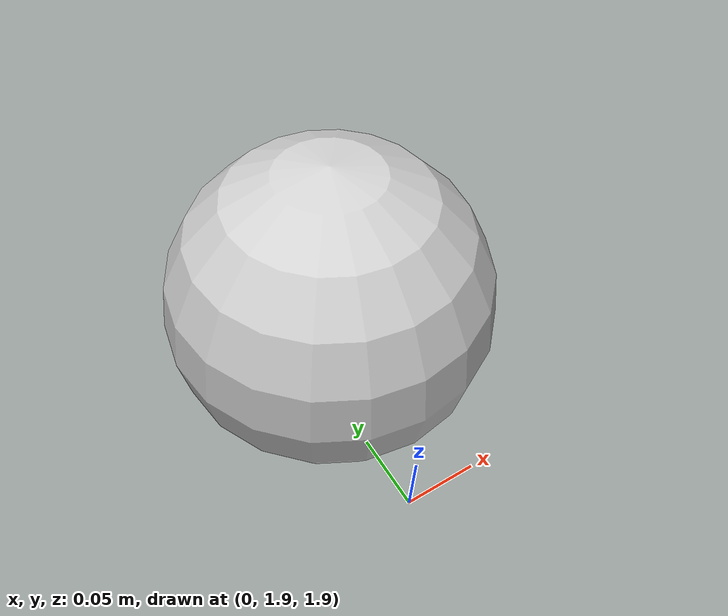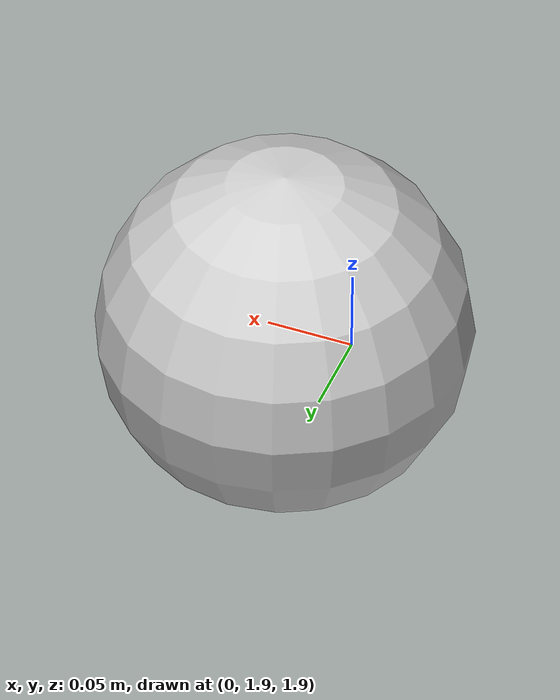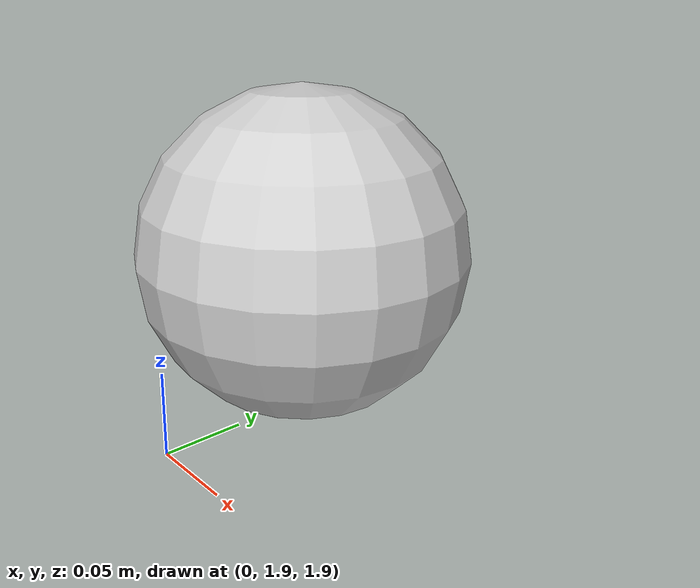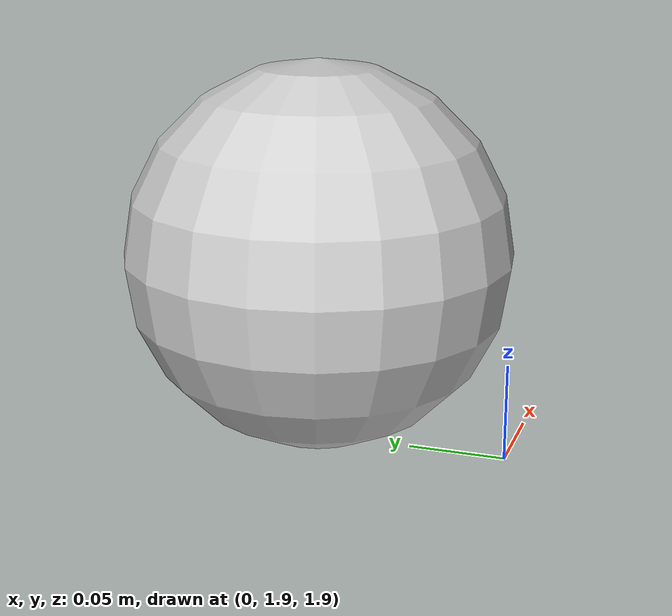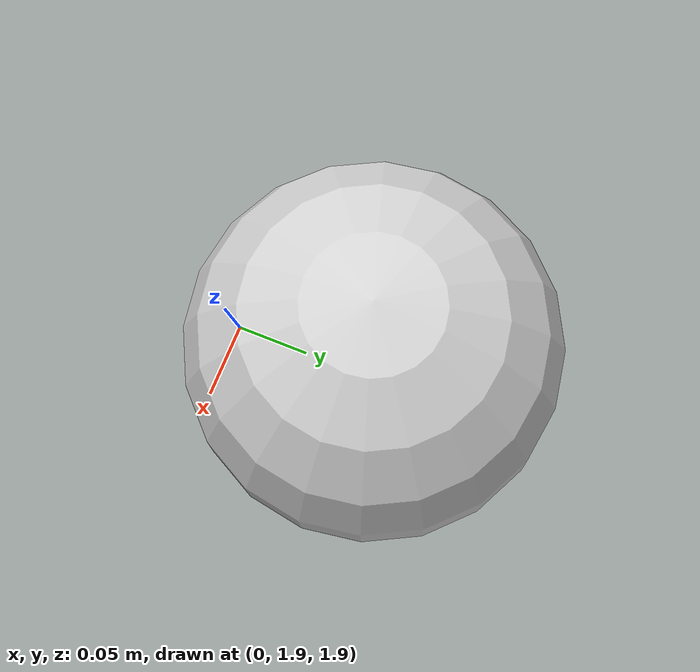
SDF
<sdf version='1.9'>
  <world name='slope'>
    <physics type="ode">
      <max_step_size>0.004</max_step_size>
      <real_time_factor>1.0</real_time_factor>
      <real_time_update_rate>250</real_time_update_rate>
    </physics>
    <plugin name='gz::sim::systems::Physics' filename='gz-sim-physics-system'/>
    <plugin name='gz::sim::systems::UserCommands' filename='gz-sim-user-commands-system'/>
    <plugin name='gz::sim::systems::SceneBroadcaster' filename='gz-sim-scene-broadcaster-system'/>
    <plugin name='gz::sim::systems::Contact' filename='gz-sim-contact-system'/>
    <plugin name='gz::sim::systems::Imu' filename='gz-sim-imu-system'/>
    <plugin name='gz::sim::systems::AirPressure' filename='gz-sim-air-pressure-system'/>
    <plugin name='gz::sim::systems::ApplyLinkWrench' filename='gz-sim-apply-link-wrench-system'/>
    <plugin name='gz::sim::systems::Sensors' filename='gz-sim-sensors-system'>
      <render_engine>ogre2</render_engine>
    </plugin>
    <gui fullscreen='false'>
      <plugin name='3D View' filename='GzScene3D'>
        <gz-gui>
          <title>3D View</title>
          <property type='bool' key='showTitleBar'>0</property>
          <property type='string' key='state'>docked</property>
        </gz-gui>
        <engine>ogre2</engine>
        <scene>scene</scene>
        <ambient_light>0.5984631152222222 0.5984631152222222 0.5984631152222222</ambient_light>
        <background_color>0.8984631152222222 0.8984631152222222 0.8984631152222222</background_color>
        <camera_pose>-6 0 6 0 0.5 0</camera_pose>
      </plugin>
      <plugin name='World control' filename='WorldControl'>
        <gz-gui>
          <title>World control</title>
          <property type='bool' key='showTitleBar'>0</property>
          <property type='bool' key='resizable'>0</property>
          <property type='double' key='height'>72</property>
          <property type='double' key='width'>121</property>
          <property type='double' key='z'>1</property>
          <property type='string' key='state'>floating</property>
          <anchors target='3D View'>
            <line own='left' target='left'/>
            <line own='bottom' target='bottom'/>
          </anchors>
        </gz-gui>
        <play_pause>1</play_pause>
        <step>1</step>
        <start_paused>1</start_paused>
      </plugin>
      <plugin name='World stats' filename='WorldStats'>
        <gz-gui>
          <title>World stats</title>
          <property type='bool' key='showTitleBar'>0</property>
          <property type='bool' key='resizable'>0</property>
          <property type='double' key='height'>110</property>
          <property type='double' key='width'>290</property>
          <property type='double' key='z'>1</property>
          <property type='string' key='state'>floating</property>
          <anchors target='3D View'>
            <line own='right' target='right'/>
            <line own='bottom' target='bottom'/>
          </anchors>
        </gz-gui>
        <sim_time>1</sim_time>
        <real_time>1</real_time>
        <real_time_factor>1</real_time_factor>
        <iterations>1</iterations>
      </plugin>
      <plugin name='Entity tree' filename='EntityTree'/>
      <plugin filename="InteractiveViewControl" name="Interactive view control">
        <gz-gui>
          <property key="resizable" type="bool">false</property>
          <property key="width" type="double">5</property>
          <property key="height" type="double">5</property>
          <property key="state" type="string">floating</property>
          <property key="showTitleBar" type="bool">false</property>
        </gz-gui>
      </plugin>
    </gui>
    <gravity>0 0 -9.8</gravity>
    <magnetic_field>6e-06 2.3e-05 -4.2e-05</magnetic_field>
    <atmosphere type='adiabatic'/>
    <scene>
      <grid>false</grid>
      <ambient>0.4 0.4 0.4 1</ambient>
      <background>0.7 0.7 0.7 1</background>
      <shadows>true</shadows>
    </scene>
    <model name='ground_plane'>
      <pose relative_to='world'>0 0 0 0.0 0 0</pose>
      <static>true</static>
      <link name='link'>
        <collision name='collision'>
          <geometry>
            <plane>
              <normal>0 0 1</normal>
              <size>1 1</size>
            </plane>
          </geometry>
          <surface>
            <friction>
              <ode/>
            </friction>
            <bounce/>
            <contact/>
          </surface>
        </collision>
        <visual name='visual'>
          <geometry>
            <plane>
              <normal>0 0 1</normal>
              <size>100 100</size>
            </plane>
          </geometry>
          <material>
            <ambient>0.8 0.8 0.8 1</ambient>
            <diffuse>0.8 0.8 0.8 1</diffuse>
            <specular>0.8 0.8 0.8 1</specular>
          </material>
        </visual>
        <pose>0 0 0 0 -0 0</pose>
        <inertial>
          <pose>0 0 0 0 -0 0</pose>
          <mass>1</mass>
          <inertia>
            <ixx>1</ixx>
            <ixy>0</ixy>
            <ixz>0</ixz>
            <iyy>1</iyy>
            <iyz>0</iyz>
            <izz>1</izz>
          </inertia>
        </inertial>
        <enable_wind>false</enable_wind>
      </link>
      <pose>0 0 0 0 -0 0</pose>
      <self_collide>false</self_collide>
    </model>
    <model name='sphere'>
      <pose relative_to='world'>0 2 2 0.0 0 0</pose>
      <link name='link'>
        <collision name='collision'>
          <geometry>
            <sphere>
              <radius>0.1</radius>
            </sphere>
          </geometry>
          <surface>
            <friction>
              <ode/>
            </friction>
            <bounce/>
            <contact/>
          </surface>
        </collision>
        <visual name='visual'>
          <geometry>
            <sphere>
              <radius>0.1</radius>
            </sphere>
          </geometry>
          <material>
            <ambient>0.8 0.0 0.0 1</ambient>
            <diffuse>0.8 0.8 0.8 1</diffuse>
            <specular>0.8 0.8 0.8 1</specular>
          </material>
        </visual>
        <pose>0 0 0 0 -0 0</pose>
        <inertial>
          <pose>0 0 0 0 -0 0</pose>
          <mass>1</mass>
          <inertia>
            <ixx>0.4</ixx>
            <ixy>0</ixy>
            <ixz>0</ixz>
            <iyy>0.4</iyy>
            <iyz>0</iyz>
            <izz>0.4</izz>
          </inertia>
        </inertial>
      </link>
      <self_collide>false</self_collide>
      <plugin
        filename="gz-sim-odometry-publisher-system"
        name="gz::sim::systems::OdometryPublisher">
        <odom_frame>world</odom_frame>
        <robot_base_frame>link</robot_base_frame>
        <dimensions>3</dimensions>

      </plugin>
    </model>
    <light name='sunUTC' type='directional'>
      <pose>0 0 500 0 -0 0</pose>
      <cast_shadows>true</cast_shadows>
      <intensity>1</intensity>
      <direction>0.001 0.625 -0.78</direction>
      <diffuse>0.904 0.904 0.904 1</diffuse>
      <specular>0.271 0.271 0.271 1</specular>
      <attenuation>
        <range>2000</range>
        <linear>0</linear>
        <constant>1</constant>
        <quadratic>0</quadratic>
      </attenuation>
      <spot>
        <inner_angle>0</inner_angle>
        <outer_angle>0</outer_angle>
        <falloff>0</falloff>
      </spot>
    </light>
  </world>
</sdf>
